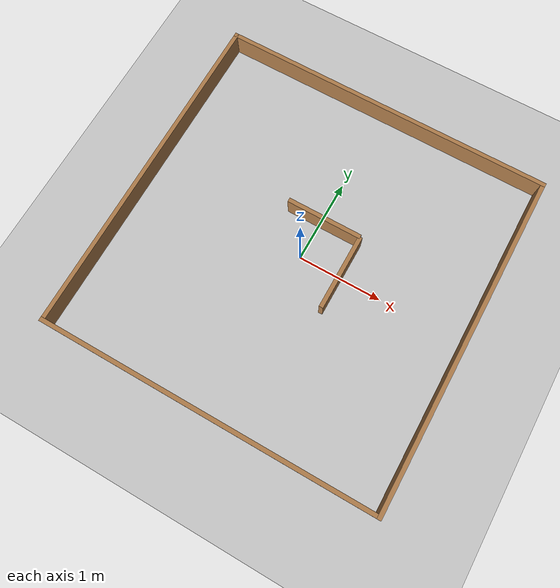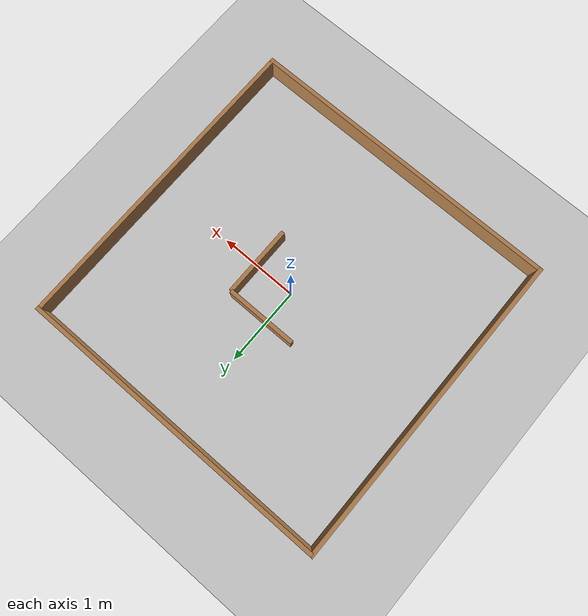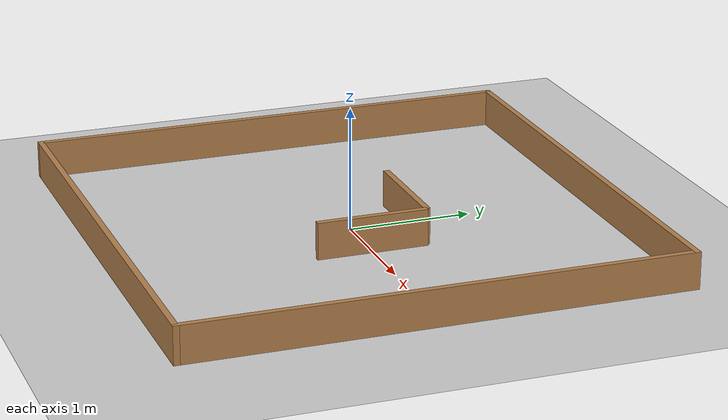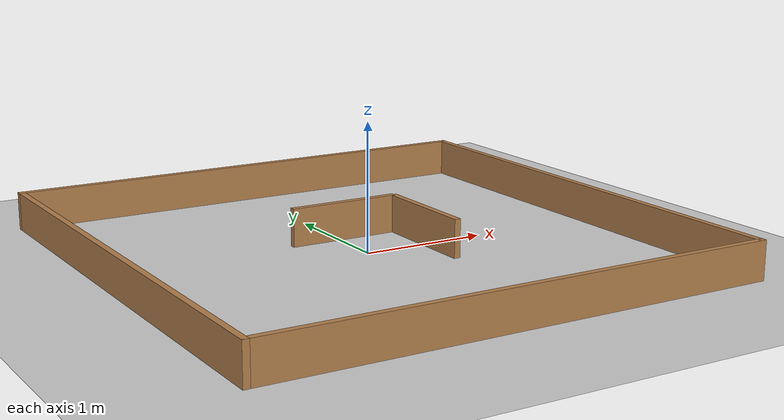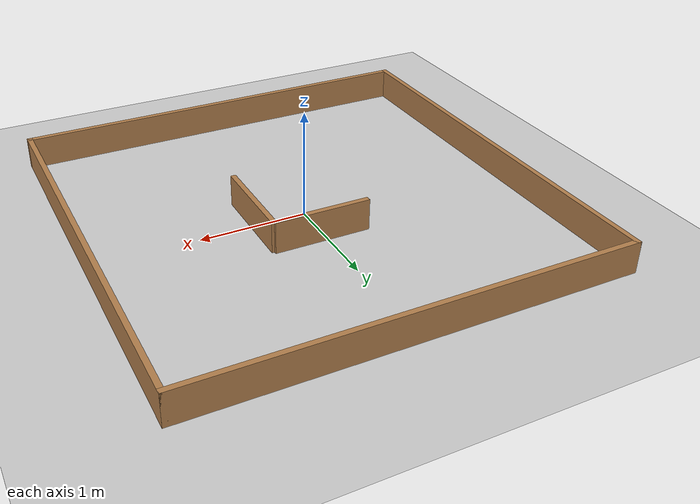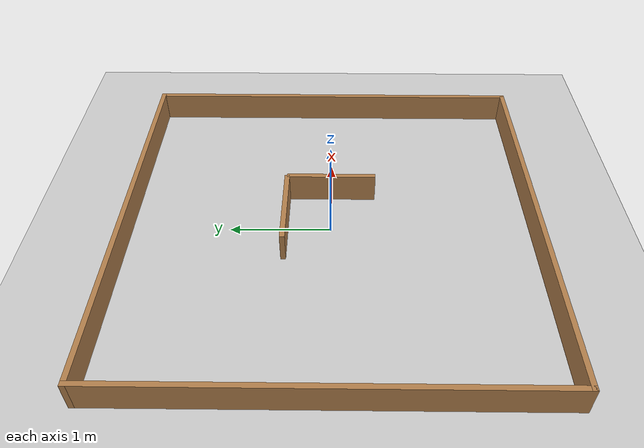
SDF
<sdf version="1.5">
 <world name="default">
  <include><uri>model://sun</uri></include>
  <include><uri>model://ground_plane</uri></include>
  <include><uri>model://square4m</uri></include>
  <include><uri>model://wall90cm</uri><name>wall90_1</name><pose>0.5 0 0 0 0 1.57</pose></include>
  <include><uri>model://wall90cm</uri><name>wall90_2</name><pose>0.05 0.45 0 0 0 0</pose></include>
 </world>
</sdf>

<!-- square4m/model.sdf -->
<sdf version='1.7'>
  <model name='square4m'>
    <pose>0 0 0 0 -0 0</pose>
    <link name='Wall_10'>
      <collision name='Wall_10_Collision'>
        <geometry>
          <box>
            <size>4.05 0.05 0.3</size>
          </box>
        </geometry>
        <pose>0 0 0.15 0 -0 0</pose>
      </collision>
      <visual name='Wall_10_Visual'>
        <pose>0 0 0.15 0 -0 0</pose>
        <geometry>
          <box>
            <size>4.05 0.05 0.3</size>
          </box>
        </geometry>
        <material>
          <script>
            <uri>file://media/materials/scripts/gazebo.material</uri>
            <name>Gazebo/Wood</name>
          </script>
          <ambient>1 1 1 1</ambient>
        </material>
        <meta>
          <layer>0</layer>
        </meta>
      </visual>
      <pose>0 2 0 0 -0 0</pose>
    </link>
    <link name='Wall_12'>
      <collision name='Wall_12_Collision'>
        <geometry>
          <box>
            <size>4.05 0.05 0.3</size>
          </box>
        </geometry>
        <pose>0 0 0.15 0 -0 0</pose>
      </collision>
      <visual name='Wall_12_Visual'>
        <pose>0 0 0.15 0 -0 0</pose>
        <geometry>
          <box>
            <size>4.05 0.05 0.3</size>
          </box>
        </geometry>
        <material>
          <script>
            <uri>file://media/materials/scripts/gazebo.material</uri>
            <name>Gazebo/Wood</name>
          </script>
          <ambient>1 1 1 1</ambient>
        </material>
        <meta>
          <layer>0</layer>
        </meta>
      </visual>
      <pose>2 0 0 0 -0 -1.5708</pose>
    </link>
    <link name='Wall_14'>
      <collision name='Wall_14_Collision'>
        <geometry>
          <box>
            <size>4.05 0.05 0.3</size>
          </box>
        </geometry>
        <pose>0 0 0.15 0 -0 0</pose>
      </collision>
      <visual name='Wall_14_Visual'>
        <pose>0 0 0.15 0 -0 0</pose>
        <geometry>
          <box>
            <size>4.05 0.05 0.3</size>
          </box>
        </geometry>
        <material>
          <script>
            <uri>file://media/materials/scripts/gazebo.material</uri>
            <name>Gazebo/Wood</name>
          </script>
          <ambient>1 1 1 1</ambient>
        </material>
        <meta>
          <layer>0</layer>
        </meta>
      </visual>
      <pose>0 -2 0 0 -0 3.14159</pose>
    </link>
    <link name='Wall_8'>
      <collision name='Wall_8_Collision'>
        <geometry>
          <box>
            <size>4.05 0.05 0.3</size>
          </box>
        </geometry>
        <pose>0 0 0.15 0 -0 0</pose>
      </collision>
      <visual name='Wall_8_Visual'>
        <pose>0 0 0.15 0 -0 0</pose>
        <geometry>
          <box>
            <size>4.05 0.05 0.3</size>
          </box>
        </geometry>
        <material>
          <script>
            <uri>file://media/materials/scripts/gazebo.material</uri>
            <name>Gazebo/Wood</name>
          </script>
          <ambient>1 1 1 1</ambient>
        </material>
        <meta>
          <layer>0</layer>
        </meta>
      </visual>
      <pose>-2 0 0 0 -0 -1.5708</pose>
    </link>
    <static>1</static>
  </model>
</sdf>

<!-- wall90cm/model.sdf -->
<sdf version='1.7'>
  <model name='wall90cm'>
    <pose>0 0 0 0 0 0</pose>
    <link name='Wall_6'>
      <collision name='Wall_6_Collision'>
        <geometry>
          <box>
            <size>0.9 0.05 0.3</size>
          </box>
        </geometry>
        <pose>0 0 0.15 0 -0 0</pose>
      </collision>
      <visual name='Wall_6_Visual'>
        <pose>0 0 0.15 0 -0 0</pose>
        <geometry>
          <box>
            <size>0.9 0.05 0.3</size>
          </box>
        </geometry>
        <material>
          <script>
            <uri>file://media/materials/scripts/gazebo.material</uri>
            <name>Gazebo/Wood</name>
          </script>
          <ambient>1 1 1 1</ambient>
        </material>
        <meta>
          <layer>0</layer>
        </meta>
      </visual>
      <pose>0 0 0 0 0 0</pose>
    </link>
    <static>1</static>
  </model>
</sdf>
